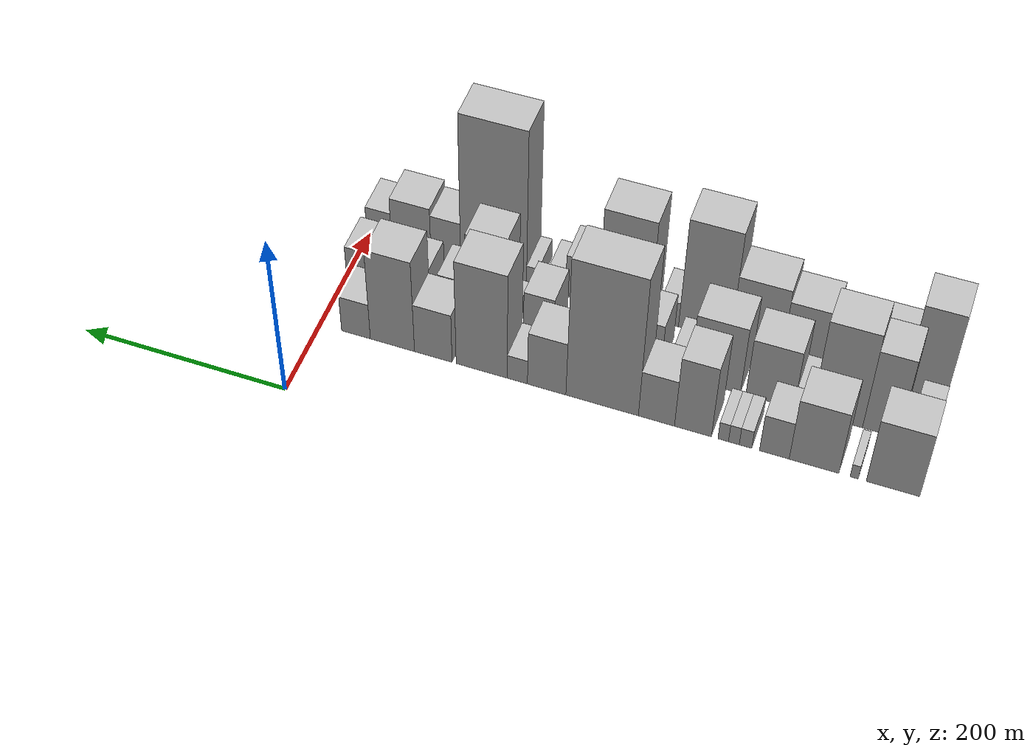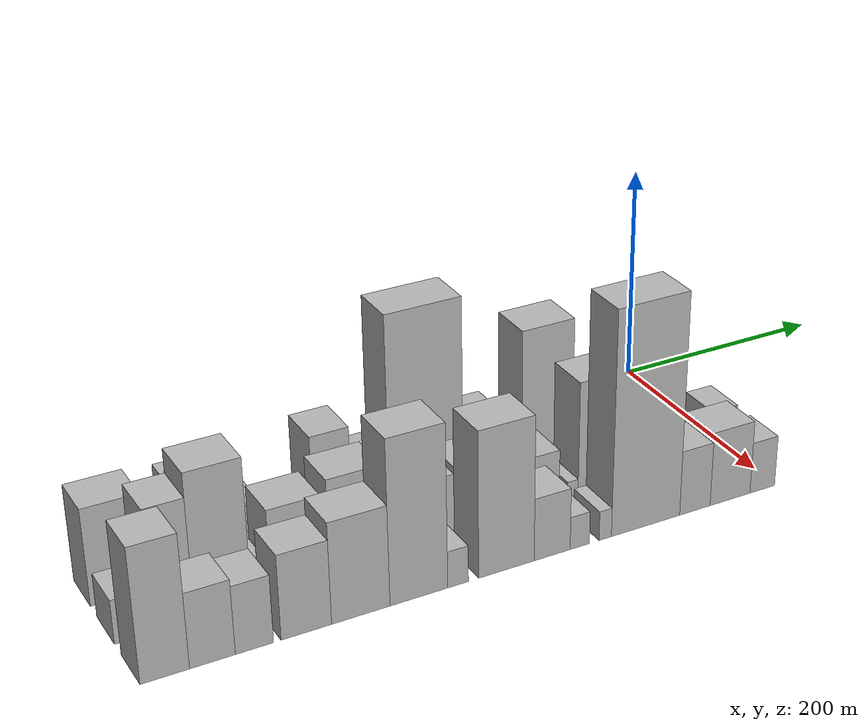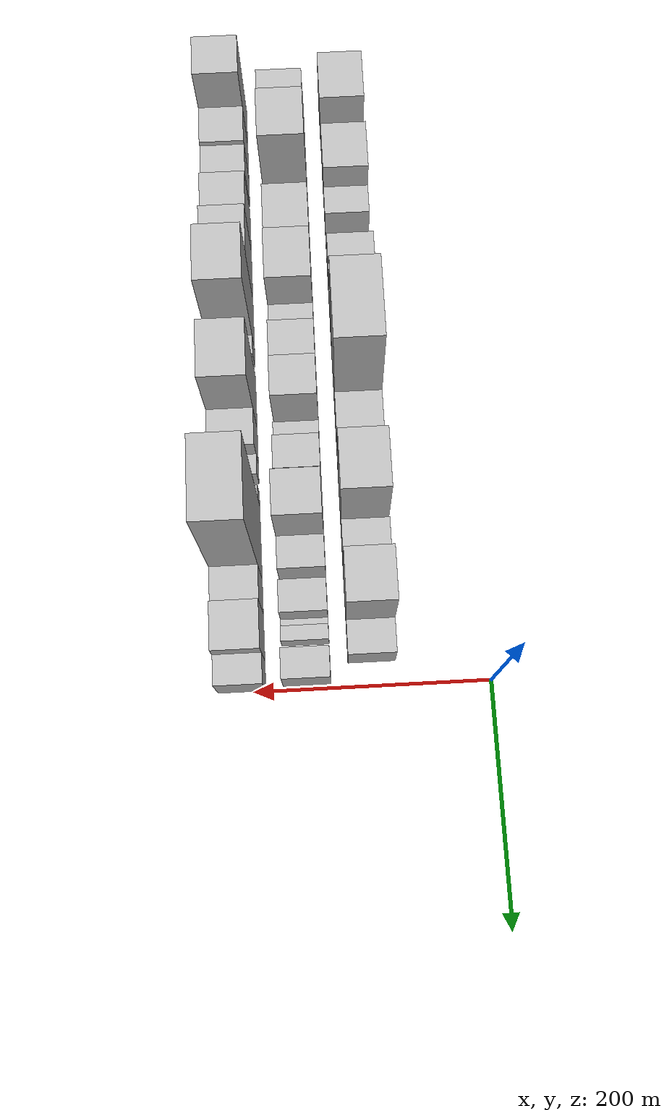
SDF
<sdf version="1.6">
 <world name="default">
  <model name="building_1">
   <static>1</static>
   <pose>100.0000 -536.5334 0 0.000000 0.000000 0.000000</pose>
   <link name="link">
    <pose>0 0 43.50 0 0 0</pose>
    <collision name="collision"><geometry><box><size>40.0000 46.9333 87.0000</size></box></geometry></collision>
    <visual name="visual">
     <cast_shadows>0</cast_shadows>
     <geometry><box><size>40.0000 46.9333 87.0000</size></box></geometry>
     <material>
      <script>
       <uri>model://HANNAS_wall/materials/scripts</uri>
       <uri>model://HANNAS_wall/materials/textures</uri>
       <name>vrc/HANNAS_wall</name>
      </script>
     </material>
    </visual>
   </link>
  </model>
  <model name="building_2">
   <static>1</static>
   <pose>100.0000 -502.4519 0 0.000000 0.000000 0.000000</pose>
   <link name="link">
    <pose>0 0 9.00 0 0 0</pose>
    <collision name="collision"><geometry><box><size>40.0000 7.2296 18.0000</size></box></geometry></collision>
    <visual name="visual">
     <cast_shadows>0</cast_shadows>
     <geometry><box><size>40.0000 7.2296 18.0000</size></box></geometry>
     <material>
      <script>
       <uri>model://HANNAS_wall/materials/scripts</uri>
       <uri>model://HANNAS_wall/materials/textures</uri>
       <name>vrc/HANNAS_wall</name>
      </script>
     </material>
    </visual>
   </link>
  </model>
  <model name="building_3">
   <static>1</static>
   <pose>100.0000 -466.6403 0 0.000000 0.000000 0.000000</pose>
   <link name="link">
    <pose>0 0 42.00 0 0 0</pose>
    <collision name="collision"><geometry><box><size>40.0000 44.3936 84.0000</size></box></geometry></collision>
    <visual name="visual">
     <cast_shadows>0</cast_shadows>
     <geometry><box><size>40.0000 44.3936 84.0000</size></box></geometry>
     <material>
      <script>
       <uri>model://HANNAS_wall/materials/scripts</uri>
       <uri>model://HANNAS_wall/materials/textures</uri>
       <name>vrc/HANNAS_wall</name>
      </script>
     </material>
    </visual>
   </link>
  </model>
  <model name="building_4">
   <static>1</static>
   <pose>100.0000 -431.0699 0 0.000000 0.000000 0.000000</pose>
   <link name="link">
    <pose>0 0 25.50 0 0 0</pose>
    <collision name="collision"><geometry><box><size>40.0000 26.7471 51.0000</size></box></geometry></collision>
    <visual name="visual">
     <cast_shadows>0</cast_shadows>
     <geometry><box><size>40.0000 26.7471 51.0000</size></box></geometry>
     <material>
      <script>
       <uri>model://HANNAS_wall/materials/scripts</uri>
       <uri>model://HANNAS_wall/materials/textures</uri>
       <name>vrc/HANNAS_wall</name>
      </script>
     </material>
    </visual>
   </link>
  </model>
  <model name="building_5">
   <static>1</static>
   <pose>100.0000 -405.0169 0 0.000000 0.000000 0.000000</pose>
   <link name="link">
    <pose>0 0 12.00 0 0 0</pose>
    <collision name="collision"><geometry><box><size>40.0000 11.3590 24.0000</size></box></geometry></collision>
    <visual name="visual">
     <cast_shadows>0</cast_shadows>
     <geometry><box><size>40.0000 11.3590 24.0000</size></box></geometry>
     <material>
      <script>
       <uri>model://HANNAS_wall/materials/scripts</uri>
       <uri>model://HANNAS_wall/materials/textures</uri>
       <name>vrc/HANNAS_wall</name>
      </script>
     </material>
    </visual>
   </link>
  </model>
  <model name="building_6">
   <static>1</static>
   <pose>100.0000 -394.4631 0 0.000000 0.000000 0.000000</pose>
   <link name="link">
    <pose>0 0 12.00 0 0 0</pose>
    <collision name="collision"><geometry><box><size>40.0000 9.7486 24.0000</size></box></geometry></collision>
    <visual name="visual">
     <cast_shadows>0</cast_shadows>
     <geometry><box><size>40.0000 9.7486 24.0000</size></box></geometry>
     <material>
      <script>
       <uri>model://HANNAS_wall/materials/scripts</uri>
       <uri>model://HANNAS_wall/materials/textures</uri>
       <name>vrc/HANNAS_wall</name>
      </script>
     </material>
    </visual>
   </link>
  </model>
  <model name="building_7">
   <static>1</static>
   <pose>100.0000 -384.7748 0 0.000000 0.000000 0.000000</pose>
   <link name="link">
    <pose>0 0 12.00 0 0 0</pose>
    <collision name="collision"><geometry><box><size>40.0000 9.6279 24.0000</size></box></geometry></collision>
    <visual name="visual">
     <cast_shadows>0</cast_shadows>
     <geometry><box><size>40.0000 9.6279 24.0000</size></box></geometry>
     <material>
      <script>
       <uri>model://HANNAS_wall/materials/scripts</uri>
       <uri>model://HANNAS_wall/materials/textures</uri>
       <name>vrc/HANNAS_wall</name>
      </script>
     </material>
    </visual>
   </link>
  </model>
  <model name="building_8">
   <static>1</static>
   <pose>100.0000 -357.0146 0 0.000000 0.000000 0.000000</pose>
   <link name="link">
    <pose>0 0 48.00 0 0 0</pose>
    <collision name="collision"><geometry><box><size>40.0000 33.8926 96.0000</size></box></geometry></collision>
    <visual name="visual">
     <cast_shadows>0</cast_shadows>
     <geometry><box><size>40.0000 33.8926 96.0000</size></box></geometry>
     <material>
      <script>
       <uri>model://HANNAS_wall/materials/scripts</uri>
       <uri>model://HANNAS_wall/materials/textures</uri>
       <name>vrc/HANNAS_wall</name>
      </script>
     </material>
    </visual>
   </link>
  </model>
  <model name="building_9">
   <static>1</static>
   <pose>100.0000 -323.3903 0 0.000000 0.000000 0.000000</pose>
   <link name="link">
    <pose>0 0 31.50 0 0 0</pose>
    <collision name="collision"><geometry><box><size>40.0000 33.3559 63.0000</size></box></geometry></collision>
    <visual name="visual">
     <cast_shadows>0</cast_shadows>
     <geometry><box><size>40.0000 33.3559 63.0000</size></box></geometry>
     <material>
      <script>
       <uri>model://HANNAS_wall/materials/scripts</uri>
       <uri>model://HANNAS_wall/materials/textures</uri>
       <name>vrc/HANNAS_wall</name>
      </script>
     </material>
    </visual>
   </link>
  </model>
  <model name="building_10">
   <static>1</static>
   <pose>100.0000 -272.7068 0 0.000000 0.000000 0.000000</pose>
   <link name="link">
    <pose>0 0 93.00 0 0 0</pose>
    <collision name="collision"><geometry><box><size>40.0000 68.0113 186.0000</size></box></geometry></collision>
    <visual name="visual">
     <cast_shadows>0</cast_shadows>
     <geometry><box><size>40.0000 68.0113 186.0000</size></box></geometry>
     <material>
      <script>
       <uri>model://HANNAS_wall/materials/scripts</uri>
       <uri>model://HANNAS_wall/materials/textures</uri>
       <name>vrc/HANNAS_wall</name>
      </script>
     </material>
    </visual>
   </link>
  </model>
  <model name="building_11">
   <static>1</static>
   <pose>100.0000 -220.4346 0 0.000000 0.000000 0.000000</pose>
   <link name="link">
    <pose>0 0 36.00 0 0 0</pose>
    <collision name="collision"><geometry><box><size>40.0000 36.5331 72.0000</size></box></geometry></collision>
    <visual name="visual">
     <cast_shadows>0</cast_shadows>
     <geometry><box><size>40.0000 36.5331 72.0000</size></box></geometry>
     <material>
      <script>
       <uri>model://HANNAS_wall/materials/scripts</uri>
       <uri>model://HANNAS_wall/materials/textures</uri>
       <name>vrc/HANNAS_wall</name>
      </script>
     </material>
    </visual>
   </link>
  </model>
  <model name="building_12">
   <static>1</static>
   <pose>100.0000 -192.5128 0 0.000000 0.000000 0.000000</pose>
   <link name="link">
    <pose>0 0 16.50 0 0 0</pose>
    <collision name="collision"><geometry><box><size>40.0000 19.3104 33.0000</size></box></geometry></collision>
    <visual name="visual">
     <cast_shadows>0</cast_shadows>
     <geometry><box><size>40.0000 19.3104 33.0000</size></box></geometry>
     <material>
      <script>
       <uri>model://HANNAS_wall/materials/scripts</uri>
       <uri>model://HANNAS_wall/materials/textures</uri>
       <name>vrc/HANNAS_wall</name>
      </script>
     </material>
    </visual>
   </link>
  </model>
  <model name="building_13">
   <static>1</static>
   <pose>100.0000 -158.2269 0 0.000000 0.000000 0.000000</pose>
   <link name="link">
    <pose>0 0 70.50 0 0 0</pose>
    <collision name="collision"><geometry><box><size>40.0000 49.2615 141.0000</size></box></geometry></collision>
    <visual name="visual">
     <cast_shadows>0</cast_shadows>
     <geometry><box><size>40.0000 49.2615 141.0000</size></box></geometry>
     <material>
      <script>
       <uri>model://HANNAS_wall/materials/scripts</uri>
       <uri>model://HANNAS_wall/materials/textures</uri>
       <name>vrc/HANNAS_wall</name>
      </script>
     </material>
    </visual>
   </link>
  </model>
  <model name="building_14">
   <static>1</static>
   <pose>100.0000 -111.2981 0 0.000000 0.000000 0.000000</pose>
   <link name="link">
    <pose>0 0 33.00 0 0 0</pose>
    <collision name="collision"><geometry><box><size>40.0000 36.5961 66.0000</size></box></geometry></collision>
    <visual name="visual">
     <cast_shadows>0</cast_shadows>
     <geometry><box><size>40.0000 36.5961 66.0000</size></box></geometry>
     <material>
      <script>
       <uri>model://HANNAS_wall/materials/scripts</uri>
       <uri>model://HANNAS_wall/materials/textures</uri>
       <name>vrc/HANNAS_wall</name>
      </script>
     </material>
    </visual>
   </link>
  </model>
  <model name="building_15">
   <static>1</static>
   <pose>100.0000 -71.2497 0 0.000000 0.000000 0.000000</pose>
   <link name="link">
    <pose>0 0 61.50 0 0 0</pose>
    <collision name="collision"><geometry><box><size>40.0000 43.5008 123.0000</size></box></geometry></collision>
    <visual name="visual">
     <cast_shadows>0</cast_shadows>
     <geometry><box><size>40.0000 43.5008 123.0000</size></box></geometry>
     <material>
      <script>
       <uri>model://HANNAS_wall/materials/scripts</uri>
       <uri>model://HANNAS_wall/materials/textures</uri>
       <name>vrc/HANNAS_wall</name>
      </script>
     </material>
    </visual>
   </link>
  </model>
  <model name="building_16">
   <static>1</static>
   <pose>100.0000 -35.2261 0 0.000000 0.000000 0.000000</pose>
   <link name="link">
    <pose>0 0 24.00 0 0 0</pose>
    <collision name="collision"><geometry><box><size>40.0000 28.5463 48.0000</size></box></geometry></collision>
    <visual name="visual">
     <cast_shadows>0</cast_shadows>
     <geometry><box><size>40.0000 28.5463 48.0000</size></box></geometry>
     <material>
      <script>
       <uri>model://HANNAS_wall/materials/scripts</uri>
       <uri>model://HANNAS_wall/materials/textures</uri>
       <name>vrc/HANNAS_wall</name>
      </script>
     </material>
    </visual>
   </link>
  </model>
  <model name="building_36">
   <static>1</static>
   <pose>155.0000 -548.8526 0 0.000000 0.000000 0.000000</pose>
   <link name="link">
    <pose>0 0 19.50 0 0 0</pose>
    <collision name="collision"><geometry><box><size>40.0000 22.2948 39.0000</size></box></geometry></collision>
    <visual name="visual">
     <cast_shadows>0</cast_shadows>
     <geometry><box><size>40.0000 22.2948 39.0000</size></box></geometry>
     <material>
      <script>
       <uri>model://HANNAS_wall/materials/scripts</uri>
       <uri>model://HANNAS_wall/materials/textures</uri>
       <name>vrc/HANNAS_wall</name>
      </script>
     </material>
    </visual>
   </link>
  </model>
  <model name="building_37">
   <static>1</static>
   <pose>155.0000 -533.7594 0 0.000000 0.000000 0.000000</pose>
   <link name="link">
    <pose>0 0 9.00 0 0 0</pose>
    <collision name="collision"><geometry><box><size>40.0000 7.8916 18.0000</size></box></geometry></collision>
    <visual name="visual">
     <cast_shadows>0</cast_shadows>
     <geometry><box><size>40.0000 7.8916 18.0000</size></box></geometry>
     <material>
      <script>
       <uri>model://HANNAS_wall/materials/scripts</uri>
       <uri>model://HANNAS_wall/materials/textures</uri>
       <name>vrc/HANNAS_wall</name>
      </script>
     </material>
    </visual>
   </link>
  </model>
  <model name="building_38">
   <static>1</static>
   <pose>155.0000 -513.3485 0 0.000000 0.000000 0.000000</pose>
   <link name="link">
    <pose>0 0 54.00 0 0 0</pose>
    <collision name="collision"><geometry><box><size>40.0000 32.9303 108.0000</size></box></geometry></collision>
    <visual name="visual">
     <cast_shadows>0</cast_shadows>
     <geometry><box><size>40.0000 32.9303 108.0000</size></box></geometry>
     <material>
      <script>
       <uri>model://HANNAS_wall/materials/scripts</uri>
       <uri>model://HANNAS_wall/materials/textures</uri>
       <name>vrc/HANNAS_wall</name>
      </script>
     </material>
    </visual>
   </link>
  </model>
  <model name="building_39">
   <static>1</static>
   <pose>155.0000 -473.8424 0 0.000000 0.000000 0.000000</pose>
   <link name="link">
    <pose>0 0 64.50 0 0 0</pose>
    <collision name="collision"><geometry><box><size>40.0000 46.0820 129.0000</size></box></geometry></collision>
    <visual name="visual">
     <cast_shadows>0</cast_shadows>
     <geometry><box><size>40.0000 46.0820 129.0000</size></box></geometry>
     <material>
      <script>
       <uri>model://HANNAS_wall/materials/scripts</uri>
       <uri>model://HANNAS_wall/materials/textures</uri>
       <name>vrc/HANNAS_wall</name>
      </script>
     </material>
    </visual>
   </link>
  </model>
  <model name="building_40">
   <static>1</static>
   <pose>155.0000 -442.7352 0 0.000000 0.000000 0.000000</pose>
   <link name="link">
    <pose>0 0 15.00 0 0 0</pose>
    <collision name="collision"><geometry><box><size>40.0000 16.1324 30.0000</size></box></geometry></collision>
    <visual name="visual">
     <cast_shadows>0</cast_shadows>
     <geometry><box><size>40.0000 16.1324 30.0000</size></box></geometry>
     <material>
      <script>
       <uri>model://HANNAS_wall/materials/scripts</uri>
       <uri>model://HANNAS_wall/materials/textures</uri>
       <name>vrc/HANNAS_wall</name>
      </script>
     </material>
    </visual>
   </link>
  </model>
  <model name="building_41">
   <static>1</static>
   <pose>155.0000 -412.4678 0 0.000000 0.000000 0.000000</pose>
   <link name="link">
    <pose>0 0 39.00 0 0 0</pose>
    <collision name="collision"><geometry><box><size>40.0000 44.4024 78.0000</size></box></geometry></collision>
    <visual name="visual">
     <cast_shadows>0</cast_shadows>
     <geometry><box><size>40.0000 44.4024 78.0000</size></box></geometry>
     <material>
      <script>
       <uri>model://HANNAS_wall/materials/scripts</uri>
       <uri>model://HANNAS_wall/materials/textures</uri>
       <name>vrc/HANNAS_wall</name>
      </script>
     </material>
    </visual>
   </link>
  </model>
  <model name="building_42">
   <static>1</static>
   <pose>155.0000 -361.7181 0 0.000000 0.000000 0.000000</pose>
   <link name="link">
    <pose>0 0 45.00 0 0 0</pose>
    <collision name="collision"><geometry><box><size>40.0000 47.0970 90.0000</size></box></geometry></collision>
    <visual name="visual">
     <cast_shadows>0</cast_shadows>
     <geometry><box><size>40.0000 47.0970 90.0000</size></box></geometry>
     <material>
      <script>
       <uri>model://HANNAS_wall/materials/scripts</uri>
       <uri>model://HANNAS_wall/materials/textures</uri>
       <name>vrc/HANNAS_wall</name>
      </script>
     </material>
    </visual>
   </link>
  </model>
  <model name="building_43">
   <static>1</static>
   <pose>155.0000 -329.0890 0 0.000000 0.000000 0.000000</pose>
   <link name="link">
    <pose>0 0 18.00 0 0 0</pose>
    <collision name="collision"><geometry><box><size>40.0000 18.1612 36.0000</size></box></geometry></collision>
    <visual name="visual">
     <cast_shadows>0</cast_shadows>
     <geometry><box><size>40.0000 18.1612 36.0000</size></box></geometry>
     <material>
      <script>
       <uri>model://HANNAS_wall/materials/scripts</uri>
       <uri>model://HANNAS_wall/materials/textures</uri>
       <name>vrc/HANNAS_wall</name>
      </script>
     </material>
    </visual>
   </link>
  </model>
  <model name="building_44">
   <static>1</static>
   <pose>155.0000 -293.4765 0 0.000000 0.000000 0.000000</pose>
   <link name="link">
    <pose>0 0 31.50 0 0 0</pose>
    <collision name="collision"><geometry><box><size>40.0000 35.0638 63.0000</size></box></geometry></collision>
    <visual name="visual">
     <cast_shadows>0</cast_shadows>
     <geometry><box><size>40.0000 35.0638 63.0000</size></box></geometry>
     <material>
      <script>
       <uri>model://HANNAS_wall/materials/scripts</uri>
       <uri>model://HANNAS_wall/materials/textures</uri>
       <name>vrc/HANNAS_wall</name>
      </script>
     </material>
    </visual>
   </link>
  </model>
  <model name="building_45">
   <static>1</static>
   <pose>155.0000 -257.6976 0 0.000000 0.000000 0.000000</pose>
   <link name="link">
    <pose>0 0 34.50 0 0 0</pose>
    <collision name="collision"><geometry><box><size>40.0000 36.4941 69.0000</size></box></geometry></collision>
    <visual name="visual">
     <cast_shadows>0</cast_shadows>
     <geometry><box><size>40.0000 36.4941 69.0000</size></box></geometry>
     <material>
      <script>
       <uri>model://HANNAS_wall/materials/scripts</uri>
       <uri>model://HANNAS_wall/materials/textures</uri>
       <name>vrc/HANNAS_wall</name>
      </script>
     </material>
    </visual>
   </link>
  </model>
  <model name="building_46">
   <static>1</static>
   <pose>155.0000 -224.4509 0 0.000000 0.000000 0.000000</pose>
   <link name="link">
    <pose>0 0 13.50 0 0 0</pose>
    <collision name="collision"><geometry><box><size>40.0000 11.9991 27.0000</size></box></geometry></collision>
    <visual name="visual">
     <cast_shadows>0</cast_shadows>
     <geometry><box><size>40.0000 11.9991 27.0000</size></box></geometry>
     <material>
      <script>
       <uri>model://HANNAS_wall/materials/scripts</uri>
       <uri>model://HANNAS_wall/materials/textures</uri>
       <name>vrc/HANNAS_wall</name>
      </script>
     </material>
    </visual>
   </link>
  </model>
  <model name="building_47">
   <static>1</static>
   <pose>155.0000 -193.6760 0 0.000000 0.000000 0.000000</pose>
   <link name="link">
    <pose>0 0 28.50 0 0 0</pose>
    <collision name="collision"><geometry><box><size>40.0000 29.5508 57.0000</size></box></geometry></collision>
    <visual name="visual">
     <cast_shadows>0</cast_shadows>
     <geometry><box><size>40.0000 29.5508 57.0000</size></box></geometry>
     <material>
      <script>
       <uri>model://HANNAS_wall/materials/scripts</uri>
       <uri>model://HANNAS_wall/materials/textures</uri>
       <name>vrc/HANNAS_wall</name>
      </script>
     </material>
    </visual>
   </link>
  </model>
  <model name="building_48">
   <static>1</static>
   <pose>155.0000 -165.8715 0 0.000000 0.000000 0.000000</pose>
   <link name="link">
    <pose>0 0 12.00 0 0 0</pose>
    <collision name="collision"><geometry><box><size>40.0000 10.0582 24.0000</size></box></geometry></collision>
    <visual name="visual">
     <cast_shadows>0</cast_shadows>
     <geometry><box><size>40.0000 10.0582 24.0000</size></box></geometry>
     <material>
      <script>
       <uri>model://HANNAS_wall/materials/scripts</uri>
       <uri>model://HANNAS_wall/materials/textures</uri>
       <name>vrc/HANNAS_wall</name>
      </script>
     </material>
    </visual>
   </link>
  </model>
  <model name="building_49">
   <static>1</static>
   <pose>155.0000 -141.7761 0 0.000000 0.000000 0.000000</pose>
   <link name="link">
    <pose>0 0 57.00 0 0 0</pose>
    <collision name="collision"><geometry><box><size>40.0000 38.1325 114.0000</size></box></geometry></collision>
    <visual name="visual">
     <cast_shadows>0</cast_shadows>
     <geometry><box><size>40.0000 38.1325 114.0000</size></box></geometry>
     <material>
      <script>
       <uri>model://HANNAS_wall/materials/scripts</uri>
       <uri>model://HANNAS_wall/materials/textures</uri>
       <name>vrc/HANNAS_wall</name>
      </script>
     </material>
    </visual>
   </link>
  </model>
  <model name="building_50">
   <static>1</static>
   <pose>155.0000 -108.7793 0 0.000000 0.000000 0.000000</pose>
   <link name="link">
    <pose>0 0 24.00 0 0 0</pose>
    <collision name="collision"><geometry><box><size>40.0000 27.8613 48.0000</size></box></geometry></collision>
    <visual name="visual">
     <cast_shadows>0</cast_shadows>
     <geometry><box><size>40.0000 27.8613 48.0000</size></box></geometry>
     <material>
      <script>
       <uri>model://HANNAS_wall/materials/scripts</uri>
       <uri>model://HANNAS_wall/materials/textures</uri>
       <name>vrc/HANNAS_wall</name>
      </script>
     </material>
    </visual>
   </link>
  </model>
  <model name="building_51">
   <static>1</static>
   <pose>155.0000 -72.0777 0 0.000000 0.000000 0.000000</pose>
   <link name="link">
    <pose>0 0 24.00 0 0 0</pose>
    <collision name="collision"><geometry><box><size>40.0000 27.5418 48.0000</size></box></geometry></collision>
    <visual name="visual">
     <cast_shadows>0</cast_shadows>
     <geometry><box><size>40.0000 27.5418 48.0000</size></box></geometry>
     <material>
      <script>
       <uri>model://HANNAS_wall/materials/scripts</uri>
       <uri>model://HANNAS_wall/materials/textures</uri>
       <name>vrc/HANNAS_wall</name>
      </script>
     </material>
    </visual>
   </link>
  </model>
  <model name="building_52">
   <static>1</static>
   <pose>155.0000 -54.6028 0 0.000000 0.000000 0.000000</pose>
   <link name="link">
    <pose>0 0 7.50 0 0 0</pose>
    <collision name="collision"><geometry><box><size>40.0000 7.4080 15.0000</size></box></geometry></collision>
    <visual name="visual">
     <cast_shadows>0</cast_shadows>
     <geometry><box><size>40.0000 7.4080 15.0000</size></box></geometry>
     <material>
      <script>
       <uri>model://HANNAS_wall/materials/scripts</uri>
       <uri>model://HANNAS_wall/materials/textures</uri>
       <name>vrc/HANNAS_wall</name>
      </script>
     </material>
    </visual>
   </link>
  </model>
  <model name="building_53">
   <static>1</static>
   <pose>155.0000 -44.4629 0 0.000000 0.000000 0.000000</pose>
   <link name="link">
    <pose>0 0 13.50 0 0 0</pose>
    <collision name="collision"><geometry><box><size>40.0000 12.8719 27.0000</size></box></geometry></collision>
    <visual name="visual">
     <cast_shadows>0</cast_shadows>
     <geometry><box><size>40.0000 12.8719 27.0000</size></box></geometry>
     <material>
      <script>
       <uri>model://HANNAS_wall/materials/scripts</uri>
       <uri>model://HANNAS_wall/materials/textures</uri>
       <name>vrc/HANNAS_wall</name>
      </script>
     </material>
    </visual>
   </link>
  </model>
  <model name="building_54">
   <static>1</static>
   <pose>155.0000 -16.2681 0 0.000000 0.000000 0.000000</pose>
   <link name="link">
    <pose>0 0 25.50 0 0 0</pose>
    <collision name="collision"><geometry><box><size>40.0000 25.5175 51.0000</size></box></geometry></collision>
    <visual name="visual">
     <cast_shadows>0</cast_shadows>
     <geometry><box><size>40.0000 25.5175 51.0000</size></box></geometry>
     <material>
      <script>
       <uri>model://HANNAS_wall/materials/scripts</uri>
       <uri>model://HANNAS_wall/materials/textures</uri>
       <name>vrc/HANNAS_wall</name>
      </script>
     </material>
    </visual>
   </link>
  </model>
  <model name="building_69">
   <static>1</static>
   <pose>210.0000 -541.1297 0 0.000000 0.000000 0.000000</pose>
   <link name="link">
    <pose>0 0 58.50 0 0 0</pose>
    <collision name="collision"><geometry><box><size>40.0000 37.7407 117.0000</size></box></geometry></collision>
    <visual name="visual">
     <cast_shadows>0</cast_shadows>
     <geometry><box><size>40.0000 37.7407 117.0000</size></box></geometry>
     <material>
      <script>
       <uri>model://HANNAS_wall/materials/scripts</uri>
       <uri>model://HANNAS_wall/materials/textures</uri>
       <name>vrc/HANNAS_wall</name>
      </script>
     </material>
    </visual>
   </link>
  </model>
  <model name="building_70">
   <static>1</static>
   <pose>210.0000 -504.4625 0 0.000000 0.000000 0.000000</pose>
   <link name="link">
    <pose>0 0 33.00 0 0 0</pose>
    <collision name="collision"><geometry><box><size>40.0000 35.5937 66.0000</size></box></geometry></collision>
    <visual name="visual">
     <cast_shadows>0</cast_shadows>
     <geometry><box><size>40.0000 35.5937 66.0000</size></box></geometry>
     <material>
      <script>
       <uri>model://HANNAS_wall/materials/scripts</uri>
       <uri>model://HANNAS_wall/materials/textures</uri>
       <name>vrc/HANNAS_wall</name>
      </script>
     </material>
    </visual>
   </link>
  </model>
  <model name="building_71">
   <static>1</static>
   <pose>210.0000 -471.5230 0 0.000000 0.000000 0.000000</pose>
   <link name="link">
    <pose>0 0 30.00 0 0 0</pose>
    <collision name="collision"><geometry><box><size>40.0000 30.2852 60.0000</size></box></geometry></collision>
    <visual name="visual">
     <cast_shadows>0</cast_shadows>
     <geometry><box><size>40.0000 30.2852 60.0000</size></box></geometry>
     <material>
      <script>
       <uri>model://HANNAS_wall/materials/scripts</uri>
       <uri>model://HANNAS_wall/materials/textures</uri>
       <name>vrc/HANNAS_wall</name>
      </script>
     </material>
    </visual>
   </link>
  </model>
  <model name="building_72">
   <static>1</static>
   <pose>210.0000 -429.8668 0 0.000000 0.000000 0.000000</pose>
   <link name="link">
    <pose>0 0 37.50 0 0 0</pose>
    <collision name="collision"><geometry><box><size>40.0000 41.0274 75.0000</size></box></geometry></collision>
    <visual name="visual">
     <cast_shadows>0</cast_shadows>
     <geometry><box><size>40.0000 41.0274 75.0000</size></box></geometry>
     <material>
      <script>
       <uri>model://HANNAS_wall/materials/scripts</uri>
       <uri>model://HANNAS_wall/materials/textures</uri>
       <name>vrc/HANNAS_wall</name>
      </script>
     </material>
    </visual>
   </link>
  </model>
  <model name="building_73">
   <static>1</static>
   <pose>210.0000 -384.9922 0 0.000000 0.000000 0.000000</pose>
   <link name="link">
    <pose>0 0 45.00 0 0 0</pose>
    <collision name="collision"><geometry><box><size>40.0000 48.7219 90.0000</size></box></geometry></collision>
    <visual name="visual">
     <cast_shadows>0</cast_shadows>
     <geometry><box><size>40.0000 48.7219 90.0000</size></box></geometry>
     <material>
      <script>
       <uri>model://HANNAS_wall/materials/scripts</uri>
       <uri>model://HANNAS_wall/materials/textures</uri>
       <name>vrc/HANNAS_wall</name>
      </script>
     </material>
    </visual>
   </link>
  </model>
  <model name="building_74">
   <static>1</static>
   <pose>210.0000 -335.8321 0 0.000000 0.000000 0.000000</pose>
   <link name="link">
    <pose>0 0 73.50 0 0 0</pose>
    <collision name="collision"><geometry><box><size>40.0000 49.5981 147.0000</size></box></geometry></collision>
    <visual name="visual">
     <cast_shadows>0</cast_shadows>
     <geometry><box><size>40.0000 49.5981 147.0000</size></box></geometry>
     <material>
      <script>
       <uri>model://HANNAS_wall/materials/scripts</uri>
       <uri>model://HANNAS_wall/materials/textures</uri>
       <name>vrc/HANNAS_wall</name>
      </script>
     </material>
    </visual>
   </link>
  </model>
  <model name="building_75">
   <static>1</static>
   <pose>210.0000 -301.9770 0 0.000000 0.000000 0.000000</pose>
   <link name="link">
    <pose>0 0 16.50 0 0 0</pose>
    <collision name="collision"><geometry><box><size>40.0000 18.1123 33.0000</size></box></geometry></collision>
    <visual name="visual">
     <cast_shadows>0</cast_shadows>
     <geometry><box><size>40.0000 18.1123 33.0000</size></box></geometry>
     <material>
      <script>
       <uri>model://HANNAS_wall/materials/scripts</uri>
       <uri>model://HANNAS_wall/materials/textures</uri>
       <name>vrc/HANNAS_wall</name>
      </script>
     </material>
    </visual>
   </link>
  </model>
  <model name="building_76">
   <static>1</static>
   <pose>210.0000 -258.9779 0 0.000000 0.000000 0.000000</pose>
   <link name="link">
    <pose>0 0 66.00 0 0 0</pose>
    <collision name="collision"><geometry><box><size>40.0000 49.8859 132.0000</size></box></geometry></collision>
    <visual name="visual">
     <cast_shadows>0</cast_shadows>
     <geometry><box><size>40.0000 49.8859 132.0000</size></box></geometry>
     <material>
      <script>
       <uri>model://HANNAS_wall/materials/scripts</uri>
       <uri>model://HANNAS_wall/materials/textures</uri>
       <name>vrc/HANNAS_wall</name>
      </script>
     </material>
    </visual>
   </link>
  </model>
  <model name="building_77">
   <static>1</static>
   <pose>210.0000 -217.5621 0 0.000000 0.000000 0.000000</pose>
   <link name="link">
    <pose>0 0 28.50 0 0 0</pose>
    <collision name="collision"><geometry><box><size>40.0000 32.9457 57.0000</size></box></geometry></collision>
    <visual name="visual">
     <cast_shadows>0</cast_shadows>
     <geometry><box><size>40.0000 32.9457 57.0000</size></box></geometry>
     <material>
      <script>
       <uri>model://HANNAS_wall/materials/scripts</uri>
       <uri>model://HANNAS_wall/materials/textures</uri>
       <name>vrc/HANNAS_wall</name>
      </script>
     </material>
    </visual>
   </link>
  </model>
  <model name="building_78">
   <static>1</static>
   <pose>210.0000 -192.1037 0 0.000000 0.000000 0.000000</pose>
   <link name="link">
    <pose>0 0 15.00 0 0 0</pose>
    <collision name="collision"><geometry><box><size>40.0000 17.9711 30.0000</size></box></geometry></collision>
    <visual name="visual">
     <cast_shadows>0</cast_shadows>
     <geometry><box><size>40.0000 17.9711 30.0000</size></box></geometry>
     <material>
      <script>
       <uri>model://HANNAS_wall/materials/scripts</uri>
       <uri>model://HANNAS_wall/materials/textures</uri>
       <name>vrc/HANNAS_wall</name>
      </script>
     </material>
    </visual>
   </link>
  </model>
  <model name="building_79">
   <static>1</static>
   <pose>210.0000 -168.3250 0 0.000000 0.000000 0.000000</pose>
   <link name="link">
    <pose>0 0 13.50 0 0 0</pose>
    <collision name="collision"><geometry><box><size>40.0000 11.5863 27.0000</size></box></geometry></collision>
    <visual name="visual">
     <cast_shadows>0</cast_shadows>
     <geometry><box><size>40.0000 11.5863 27.0000</size></box></geometry>
     <material>
      <script>
       <uri>model://HANNAS_wall/materials/scripts</uri>
       <uri>model://HANNAS_wall/materials/textures</uri>
       <name>vrc/HANNAS_wall</name>
      </script>
     </material>
    </visual>
   </link>
  </model>
  <model name="building_80">
   <static>1</static>
   <pose>210.0000 -129.6129 0 0.000000 0.000000 0.000000</pose>
   <link name="link">
    <pose>0 0 102.00 0 0 0</pose>
    <collision name="collision"><geometry><box><size>40.0000 65.8377 204.0000</size></box></geometry></collision>
    <visual name="visual">
     <cast_shadows>0</cast_shadows>
     <geometry><box><size>40.0000 65.8377 204.0000</size></box></geometry>
     <material>
      <script>
       <uri>model://HANNAS_wall/materials/scripts</uri>
       <uri>model://HANNAS_wall/materials/textures</uri>
       <name>vrc/HANNAS_wall</name>
      </script>
     </material>
    </visual>
   </link>
  </model>
  <model name="building_81">
   <static>1</static>
   <pose>210.0000 -81.6578 0 0.000000 0.000000 0.000000</pose>
   <link name="link">
    <pose>0 0 30.00 0 0 0</pose>
    <collision name="collision"><geometry><box><size>40.0000 30.0725 60.0000</size></box></geometry></collision>
    <visual name="visual">
     <cast_shadows>0</cast_shadows>
     <geometry><box><size>40.0000 30.0725 60.0000</size></box></geometry>
     <material>
      <script>
       <uri>model://HANNAS_wall/materials/scripts</uri>
       <uri>model://HANNAS_wall/materials/textures</uri>
       <name>vrc/HANNAS_wall</name>
      </script>
     </material>
    </visual>
   </link>
  </model>
  <model name="building_82">
   <static>1</static>
   <pose>210.0000 -46.5567 0 0.000000 0.000000 0.000000</pose>
   <link name="link">
    <pose>0 0 34.50 0 0 0</pose>
    <collision name="collision"><geometry><box><size>40.0000 40.1298 69.0000</size></box></geometry></collision>
    <visual name="visual">
     <cast_shadows>0</cast_shadows>
     <geometry><box><size>40.0000 40.1298 69.0000</size></box></geometry>
     <material>
      <script>
       <uri>model://HANNAS_wall/materials/scripts</uri>
       <uri>model://HANNAS_wall/materials/textures</uri>
       <name>vrc/HANNAS_wall</name>
      </script>
     </material>
    </visual>
   </link>
  </model>
  <model name="building_83">
   <static>1</static>
   <pose>210.0000 -13.8614 0 0.000000 0.000000 0.000000</pose>
   <link name="link">
    <pose>0 0 24.00 0 0 0</pose>
    <collision name="collision"><geometry><box><size>40.0000 25.2609 48.0000</size></box></geometry></collision>
    <visual name="visual">
     <cast_shadows>0</cast_shadows>
     <geometry><box><size>40.0000 25.2609 48.0000</size></box></geometry>
     <material>
      <script>
       <uri>model://HANNAS_wall/materials/scripts</uri>
       <uri>model://HANNAS_wall/materials/textures</uri>
       <name>vrc/HANNAS_wall</name>
      </script>
     </material>
    </visual>
   </link>
  </model>
 </world>
</sdf>
